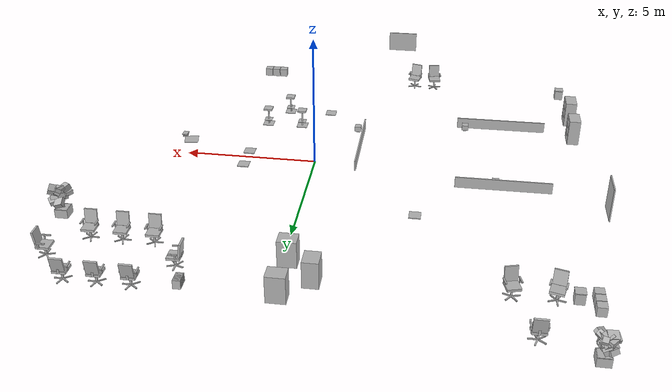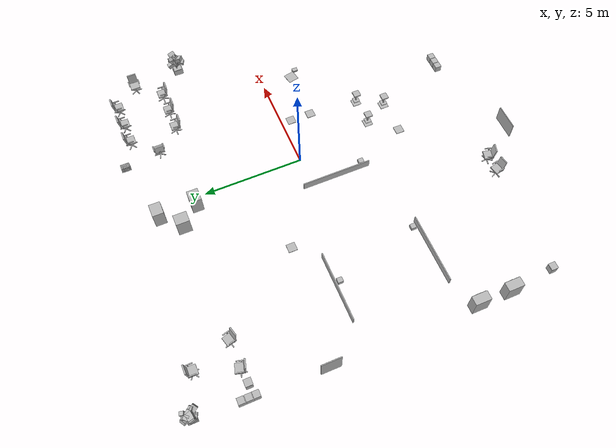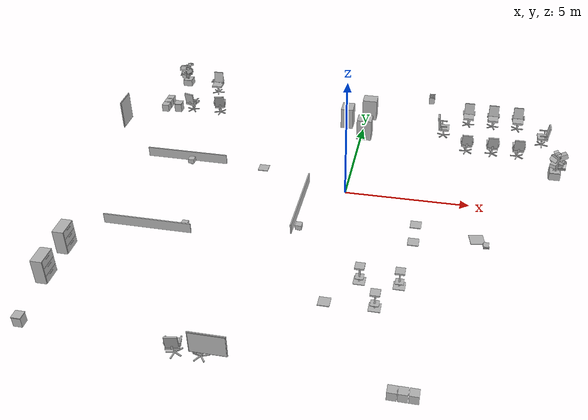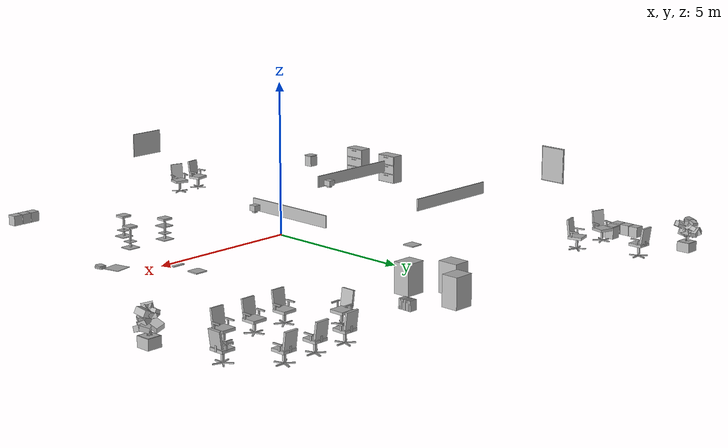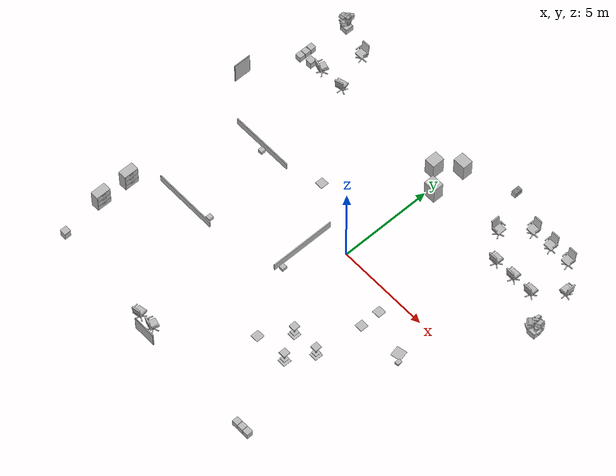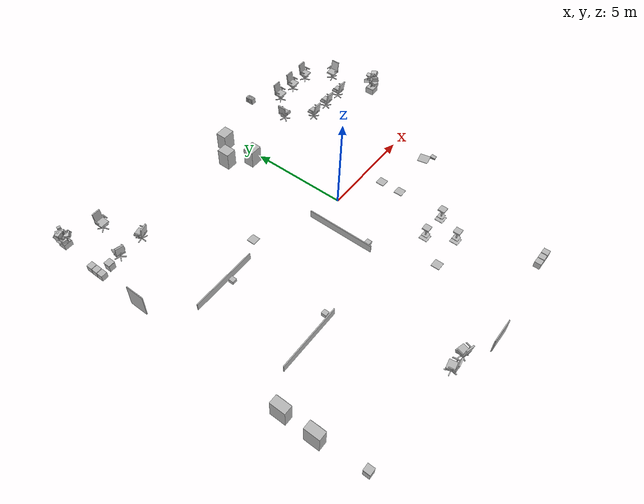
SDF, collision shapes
<sdf version="1.10">
 <model name="office_scene">
  <static>true</static>
  <link name="furniture_misc">
   <visual name="furniture_misc_visual">
    <geometry><mesh><uri>model://office_scene/meshes/furniture_misc.glb</uri></mesh></geometry>
   </visual>
   <collision name="furniture_misc_c0">
    <pose>-2.60379 -10.02456 1.10667 0.00000 -0.00000 0.00000</pose>
    <geometry><box><size>1.2000 0.0200 0.8000</size></box></geometry>
   </collision>
   <collision name="furniture_misc_c1">
    <pose>-2.60379 -10.00456 1.10667 0.00000 -0.00000 0.00000</pose>
    <geometry><box><size>1.2500 0.0400 0.8500</size></box></geometry>
   </collision>
   <collision name="furniture_misc_c2">
    <pose>-10.50379 2.91544 1.05667 0.00000 -0.00000 1.57080</pose>
    <geometry><box><size>0.9000 0.0200 1.2000</size></box></geometry>
   </collision>
   <collision name="furniture_misc_c3">
    <pose>-10.52379 2.91544 1.05667 0.00000 -0.00000 1.57080</pose>
    <geometry><box><size>0.9500 0.0400 1.2500</size></box></geometry>
   </collision>
   <collision name="furniture_misc_c4">
    <pose>-9.90379 -8.68456 -0.53333 0.00000 -0.00000 0.00000</pose>
    <geometry><box><size>0.3400 0.3400 0.4200</size></box></geometry>
   </collision>
   <collision name="furniture_misc_c5">
    <pose>-9.90379 -8.68456 -0.32333 0.00000 -0.00000 0.00000</pose>
    <geometry><box><size>0.3600 0.3600 0.0300</size></box></geometry>
   </collision>
   <collision name="furniture_misc_c6">
    <pose>2.91621 7.96544 0.16167 0.00000 0.05105 1.57080</pose>
    <geometry><box><size>0.0550 0.2600 0.3100</size></box></geometry>
   </collision>
   <collision name="furniture_misc_c7">
    <pose>2.91621 8.03044 0.16167 0.00000 0.04251 1.57080</pose>
    <geometry><box><size>0.0550 0.2600 0.3100</size></box></geometry>
   </collision>
   <collision name="furniture_misc_c8">
    <pose>2.91621 8.09544 0.16167 0.00000 -0.04779 1.57080</pose>
    <geometry><box><size>0.0550 0.2600 0.3100</size></box></geometry>
   </collision>
   <collision name="furniture_misc_c9">
    <pose>2.91621 8.16044 0.16167 0.00000 -0.02573 1.57080</pose>
    <geometry><box><size>0.0550 0.2600 0.3100</size></box></geometry>
   </collision>
   <collision name="furniture_misc_c10">
    <pose>2.91621 8.22544 0.16167 0.00000 -0.03008 1.57080</pose>
    <geometry><box><size>0.0550 0.2600 0.3100</size></box></geometry>
   </collision>
   <collision name="furniture_misc_c11">
    <pose>2.91621 8.29044 0.16167 0.00000 -0.00765 1.57080</pose>
    <geometry><box><size>0.0550 0.2600 0.3100</size></box></geometry>
   </collision>
   <collision name="furniture_misc_c12">
    <pose>2.91621 8.35544 0.16167 0.00000 -0.03722 1.57080</pose>
    <geometry><box><size>0.0550 0.2600 0.3100</size></box></geometry>
   </collision>
   <collision name="furniture_misc_c13">
    <pose>5.39621 -1.68456 -0.31461 0.00000 -0.00000 0.20944</pose>
    <geometry><box><size>0.5532 0.5532 0.0200</size></box></geometry>
   </collision>
   <collision name="furniture_misc_c14">
    <pose>5.74621 -2.03456 -0.30533 0.00000 -0.00000 0.14257</pose>
    <geometry><box><size>0.2100 0.2800 0.0350</size></box></geometry>
   </collision>
   <collision name="furniture_misc_c15">
    <pose>5.74621 -2.03456 -0.26933 0.00000 -0.00000 0.19213</pose>
    <geometry><box><size>0.2100 0.2800 0.0350</size></box></geometry>
   </collision>
   <collision name="furniture_misc_c16">
    <pose>5.74621 -2.03456 -0.23333 0.00000 -0.00000 -0.04998</pose>
    <geometry><box><size>0.2100 0.2800 0.0350</size></box></geometry>
   </collision>
   <collision name="furniture_misc_c17">
    <pose>-10.15379 -6.28456 -0.21833 0.00000 -0.00000 1.57080</pose>
    <geometry><box><size>0.8000 0.4500 1.0500</size></box></geometry>
   </collision>
   <collision name="furniture_misc_c18">
    <pose>-9.92379 -6.28456 -0.56833 0.00000 -0.00000 1.57080</pose>
    <geometry><box><size>0.7500 0.0200 0.3200</size></box></geometry>
   </collision>
   <collision name="furniture_misc_c19">
    <pose>-9.92379 -6.28456 -0.21833 0.00000 -0.00000 1.57080</pose>
    <geometry><box><size>0.7500 0.0200 0.3200</size></box></geometry>
   </collision>
   <collision name="furniture_misc_c20">
    <pose>-9.92379 -6.28456 0.13167 0.00000 -0.00000 1.57080</pose>
    <geometry><box><size>0.7500 0.0200 0.3200</size></box></geometry>
   </collision>
   <collision name="furniture_misc_c21">
    <pose>-9.90379 -6.28456 -0.47033 0.00000 -0.00000 1.57080</pose>
    <geometry><box><size>0.2200 0.0250 0.0200</size></box></geometry>
   </collision>
   <collision name="furniture_misc_c22">
    <pose>-9.90379 -6.28456 -0.12033 0.00000 -0.00000 1.57080</pose>
    <geometry><box><size>0.2200 0.0250 0.0200</size></box></geometry>
   </collision>
   <collision name="furniture_misc_c23">
    <pose>-9.90379 -6.28456 0.22967 0.00000 -0.00000 1.57080</pose>
    <geometry><box><size>0.2200 0.0250 0.0200</size></box></geometry>
   </collision>
   <collision name="furniture_misc_c24">
    <pose>-10.15379 -4.58456 -0.21833 0.00000 -0.00000 1.57080</pose>
    <geometry><box><size>0.8000 0.4500 1.0500</size></box></geometry>
   </collision>
   <collision name="furniture_misc_c25">
    <pose>-9.92379 -4.58456 -0.56833 0.00000 -0.00000 1.57080</pose>
    <geometry><box><size>0.7500 0.0200 0.3200</size></box></geometry>
   </collision>
   <collision name="furniture_misc_c26">
    <pose>-9.92379 -4.58456 -0.21833 0.00000 -0.00000 1.57080</pose>
    <geometry><box><size>0.7500 0.0200 0.3200</size></box></geometry>
   </collision>
   <collision name="furniture_misc_c27">
    <pose>-9.92379 -4.58456 0.13167 0.00000 -0.00000 1.57080</pose>
    <geometry><box><size>0.7500 0.0200 0.3200</size></box></geometry>
   </collision>
   <collision name="furniture_misc_c28">
    <pose>-9.90379 -4.58456 -0.47033 0.00000 -0.00000 1.57080</pose>
    <geometry><box><size>0.2200 0.0250 0.0200</size></box></geometry>
   </collision>
   <collision name="furniture_misc_c29">
    <pose>-9.90379 -4.58456 -0.12033 0.00000 -0.00000 1.57080</pose>
    <geometry><box><size>0.2200 0.0250 0.0200</size></box></geometry>
   </collision>
   <collision name="furniture_misc_c30">
    <pose>-9.90379 -4.58456 0.22967 0.00000 -0.00000 1.57080</pose>
    <geometry><box><size>0.2200 0.0250 0.0200</size></box></geometry>
   </collision>
   <collision name="furniture_misc_c31">
    <pose>2.99621 -0.68456 -0.72533 0.00000 -0.00000 0.00000</pose>
    <geometry><box><size>0.4400 0.4400 0.0350</size></box></geometry>
   </collision>
   <collision name="furniture_misc_c32">
    <pose>2.99621 -1.78456 -0.72533 0.00000 -0.00000 0.00000</pose>
    <geometry><box><size>0.4400 0.4400 0.0350</size></box></geometry>
   </collision>
   <collision name="furniture_misc_c33">
    <pose>0.19621 -5.68456 -0.72533 0.00000 -0.00000 0.00000</pose>
    <geometry><box><size>0.4400 0.4400 0.0350</size></box></geometry>
   </collision>
   <collision name="furniture_misc_c34">
    <pose>-4.00379 2.11544 -0.72533 0.00000 -0.00000 0.00000</pose>
    <geometry><box><size>0.4400 0.4400 0.0350</size></box></geometry>
   </collision>
   <collision name="furniture_misc_c35">
    <pose>8.16621 6.57544 -0.07333 0.00000 -0.00000 -1.57080</pose>
    <geometry><box><size>0.0500 0.3200 0.0400</size></box></geometry>
   </collision>
   <collision name="furniture_misc_c36">
    <pose>8.16621 6.05544 -0.07333 0.00000 -0.00000 -1.57080</pose>
    <geometry><box><size>0.0500 0.3200 0.0400</size></box></geometry>
   </collision>
   <collision name="furniture_misc_c37">
    <pose>8.24621 6.57544 -0.16333 0.00000 -0.00000 -1.57080</pose>
    <geometry><box><size>0.0400 0.0500 0.1600</size></box></geometry>
   </collision>
   <collision name="furniture_misc_c38">
    <pose>8.24621 6.05544 -0.16333 0.00000 -0.00000 -1.57080</pose>
    <geometry><box><size>0.0400 0.0500 0.1600</size></box></geometry>
   </collision>
   <collision name="furniture_misc_c39">
    <pose>8.38121 6.31544 0.04667 -0.13963 -0.00000 -1.57080</pose>
    <geometry><box><size>0.4500 0.0700 0.5200</size></box></geometry>
   </collision>
   <collision name="furniture_misc_c40">
    <pose>8.36621 6.31544 -0.22333 0.00000 -0.00000 -1.57080</pose>
    <geometry><box><size>0.0700 0.0600 0.1800</size></box></geometry>
   </collision>
   <collision name="furniture_misc_c41">
    <pose>8.14621 6.31544 -0.47333 0.00000 -0.00000 0.00000</pose>
    <geometry><box><size>0.0700 0.0700 0.2800</size></box></geometry>
   </collision>
   <collision name="furniture_misc_c42">
    <pose>8.14621 6.31544 -0.28333 0.00000 -0.00000 -1.57080</pose>
    <geometry><box><size>0.4800 0.4700 0.0900</size></box></geometry>
   </collision>
   <collision name="furniture_misc_c43">
    <pose>8.14621 6.16544 -0.67333 0.00000 -0.00000 -1.57080</pose>
    <geometry><box><size>0.3000 0.0450 0.0350</size></box></geometry>
   </collision>
   <collision name="furniture_misc_c44">
    <pose>8.28887 6.26908 -0.67333 0.00000 -0.00000 -0.31416</pose>
    <geometry><box><size>0.3000 0.0450 0.0350</size></box></geometry>
   </collision>
   <collision name="furniture_misc_c45">
    <pose>8.23438 6.43679 -0.67333 0.00000 -0.00000 0.94248</pose>
    <geometry><box><size>0.3000 0.0450 0.0350</size></box></geometry>
   </collision>
   <collision name="furniture_misc_c46">
    <pose>8.05804 6.43679 -0.67333 0.00000 -0.00000 2.19911</pose>
    <geometry><box><size>0.3000 0.0450 0.0350</size></box></geometry>
   </collision>
   <collision name="furniture_misc_c47">
    <pose>8.00355 6.26908 -0.67333 0.00000 -0.00000 -2.82743</pose>
    <geometry><box><size>0.3000 0.0450 0.0350</size></box></geometry>
   </collision>
   <collision name="furniture_misc_c48">
    <pose>4.48621 7.53544 -0.07333 0.00000 -0.00000 0.00000</pose>
    <geometry><box><size>0.0500 0.3200 0.0400</size></box></geometry>
   </collision>
   <collision name="furniture_misc_c49">
    <pose>5.00621 7.53544 -0.07333 0.00000 -0.00000 0.00000</pose>
    <geometry><box><size>0.0500 0.3200 0.0400</size></box></geometry>
   </collision>
   <collision name="furniture_misc_c50">
    <pose>4.48621 7.61544 -0.16333 0.00000 -0.00000 0.00000</pose>
    <geometry><box><size>0.0400 0.0500 0.1600</size></box></geometry>
   </collision>
   <collision name="furniture_misc_c51">
    <pose>5.00621 7.61544 -0.16333 0.00000 -0.00000 0.00000</pose>
    <geometry><box><size>0.0400 0.0500 0.1600</size></box></geometry>
   </collision>
   <collision name="furniture_misc_c52">
    <pose>4.74621 7.75044 0.04667 -0.13963 -0.00000 0.00000</pose>
    <geometry><box><size>0.4500 0.0700 0.5200</size></box></geometry>
   </collision>
   <collision name="furniture_misc_c53">
    <pose>4.74621 7.73544 -0.22333 0.00000 -0.00000 0.00000</pose>
    <geometry><box><size>0.0700 0.0600 0.1800</size></box></geometry>
   </collision>
   <collision name="furniture_misc_c54">
    <pose>4.74621 7.51544 -0.47333 0.00000 -0.00000 0.00000</pose>
    <geometry><box><size>0.0700 0.0700 0.2800</size></box></geometry>
   </collision>
   <collision name="furniture_misc_c55">
    <pose>4.74621 7.51544 -0.28333 0.00000 -0.00000 0.00000</pose>
    <geometry><box><size>0.4800 0.4700 0.0900</size></box></geometry>
   </collision>
   <collision name="furniture_misc_c56">
    <pose>4.89621 7.51544 -0.67333 0.00000 -0.00000 0.00000</pose>
    <geometry><box><size>0.3000 0.0450 0.0350</size></box></geometry>
   </collision>
   <collision name="furniture_misc_c57">
    <pose>4.79256 7.65810 -0.67333 0.00000 -0.00000 1.25664</pose>
    <geometry><box><size>0.3000 0.0450 0.0350</size></box></geometry>
   </collision>
   <collision name="furniture_misc_c58">
    <pose>4.62486 7.60360 -0.67333 0.00000 -0.00000 2.51327</pose>
    <geometry><box><size>0.3000 0.0450 0.0350</size></box></geometry>
   </collision>
   <collision name="furniture_misc_c59">
    <pose>4.62486 7.42727 -0.67333 0.00000 -0.00000 -2.51327</pose>
    <geometry><box><size>0.3000 0.0450 0.0350</size></box></geometry>
   </collision>
   <collision name="furniture_misc_c60">
    <pose>4.79256 7.37278 -0.67333 0.00000 -0.00000 -1.25664</pose>
    <geometry><box><size>0.3000 0.0450 0.0350</size></box></geometry>
   </collision>
   <collision name="furniture_misc_c61">
    <pose>5.63621 7.53544 -0.07333 0.00000 -0.00000 0.00000</pose>
    <geometry><box><size>0.0500 0.3200 0.0400</size></box></geometry>
   </collision>
   <collision name="furniture_misc_c62">
    <pose>6.15621 7.53544 -0.07333 0.00000 -0.00000 0.00000</pose>
    <geometry><box><size>0.0500 0.3200 0.0400</size></box></geometry>
   </collision>
   <collision name="furniture_misc_c63">
    <pose>5.63621 7.61544 -0.16333 0.00000 -0.00000 0.00000</pose>
    <geometry><box><size>0.0400 0.0500 0.1600</size></box></geometry>
   </collision>
   <collision name="furniture_misc_c64">
    <pose>6.15621 7.61544 -0.16333 0.00000 -0.00000 0.00000</pose>
    <geometry><box><size>0.0400 0.0500 0.1600</size></box></geometry>
   </collision>
   <collision name="furniture_misc_c65">
    <pose>5.89621 7.75044 0.04667 -0.13963 -0.00000 0.00000</pose>
    <geometry><box><size>0.4500 0.0700 0.5200</size></box></geometry>
   </collision>
   <collision name="furniture_misc_c66">
    <pose>5.89621 7.73544 -0.22333 0.00000 -0.00000 0.00000</pose>
    <geometry><box><size>0.0700 0.0600 0.1800</size></box></geometry>
   </collision>
   <collision name="furniture_misc_c67">
    <pose>5.89621 7.51544 -0.47333 0.00000 -0.00000 0.00000</pose>
    <geometry><box><size>0.0700 0.0700 0.2800</size></box></geometry>
   </collision>
   <collision name="furniture_misc_c68">
    <pose>5.89621 7.51544 -0.28333 0.00000 -0.00000 0.00000</pose>
    <geometry><box><size>0.4800 0.4700 0.0900</size></box></geometry>
   </collision>
   <collision name="furniture_misc_c69">
    <pose>6.04621 7.51544 -0.67333 0.00000 -0.00000 0.00000</pose>
    <geometry><box><size>0.3000 0.0450 0.0350</size></box></geometry>
   </collision>
   <collision name="furniture_misc_c70">
    <pose>5.94256 7.65810 -0.67333 0.00000 -0.00000 1.25664</pose>
    <geometry><box><size>0.3000 0.0450 0.0350</size></box></geometry>
   </collision>
   <collision name="furniture_misc_c71">
    <pose>5.77486 7.60360 -0.67333 0.00000 -0.00000 2.51327</pose>
    <geometry><box><size>0.3000 0.0450 0.0350</size></box></geometry>
   </collision>
   <collision name="furniture_misc_c72">
    <pose>5.77486 7.42727 -0.67333 0.00000 -0.00000 -2.51327</pose>
    <geometry><box><size>0.3000 0.0450 0.0350</size></box></geometry>
   </collision>
   <collision name="furniture_misc_c73">
    <pose>5.94256 7.37278 -0.67333 0.00000 -0.00000 -1.25664</pose>
    <geometry><box><size>0.3000 0.0450 0.0350</size></box></geometry>
   </collision>
   <collision name="furniture_misc_c74">
    <pose>6.78621 7.53544 -0.07333 0.00000 -0.00000 0.00000</pose>
    <geometry><box><size>0.0500 0.3200 0.0400</size></box></geometry>
   </collision>
   <collision name="furniture_misc_c75">
    <pose>7.30621 7.53544 -0.07333 0.00000 -0.00000 0.00000</pose>
    <geometry><box><size>0.0500 0.3200 0.0400</size></box></geometry>
   </collision>
   <collision name="furniture_misc_c76">
    <pose>6.78621 7.61544 -0.16333 0.00000 -0.00000 0.00000</pose>
    <geometry><box><size>0.0400 0.0500 0.1600</size></box></geometry>
   </collision>
   <collision name="furniture_misc_c77">
    <pose>7.30621 7.61544 -0.16333 0.00000 -0.00000 0.00000</pose>
    <geometry><box><size>0.0400 0.0500 0.1600</size></box></geometry>
   </collision>
   <collision name="furniture_misc_c78">
    <pose>7.04621 7.75044 0.04667 -0.13963 -0.00000 0.00000</pose>
    <geometry><box><size>0.4500 0.0700 0.5200</size></box></geometry>
   </collision>
   <collision name="furniture_misc_c79">
    <pose>7.04621 7.73544 -0.22333 0.00000 -0.00000 0.00000</pose>
    <geometry><box><size>0.0700 0.0600 0.1800</size></box></geometry>
   </collision>
   <collision name="furniture_misc_c80">
    <pose>7.04621 7.51544 -0.47333 0.00000 -0.00000 0.00000</pose>
    <geometry><box><size>0.0700 0.0700 0.2800</size></box></geometry>
   </collision>
   <collision name="furniture_misc_c81">
    <pose>7.04621 7.51544 -0.28333 0.00000 -0.00000 0.00000</pose>
    <geometry><box><size>0.4800 0.4700 0.0900</size></box></geometry>
   </collision>
   <collision name="furniture_misc_c82">
    <pose>7.19621 7.51544 -0.67333 0.00000 -0.00000 0.00000</pose>
    <geometry><box><size>0.3000 0.0450 0.0350</size></box></geometry>
   </collision>
   <collision name="furniture_misc_c83">
    <pose>7.09256 7.65810 -0.67333 0.00000 -0.00000 1.25664</pose>
    <geometry><box><size>0.3000 0.0450 0.0350</size></box></geometry>
   </collision>
   <collision name="furniture_misc_c84">
    <pose>6.92486 7.60360 -0.67333 0.00000 -0.00000 2.51327</pose>
    <geometry><box><size>0.3000 0.0450 0.0350</size></box></geometry>
   </collision>
   <collision name="furniture_misc_c85">
    <pose>6.92486 7.42727 -0.67333 0.00000 -0.00000 -2.51327</pose>
    <geometry><box><size>0.3000 0.0450 0.0350</size></box></geometry>
   </collision>
   <collision name="furniture_misc_c86">
    <pose>7.09256 7.37278 -0.67333 0.00000 -0.00000 -1.25664</pose>
    <geometry><box><size>0.3000 0.0450 0.0350</size></box></geometry>
   </collision>
   <collision name="furniture_misc_c87">
    <pose>5.00621 5.09544 -0.07333 0.00000 -0.00000 -3.14159</pose>
    <geometry><box><size>0.0500 0.3200 0.0400</size></box></geometry>
   </collision>
   <collision name="furniture_misc_c88">
    <pose>4.48621 5.09544 -0.07333 0.00000 -0.00000 -3.14159</pose>
    <geometry><box><size>0.0500 0.3200 0.0400</size></box></geometry>
   </collision>
   <collision name="furniture_misc_c89">
    <pose>5.00621 5.01544 -0.16333 0.00000 -0.00000 -3.14159</pose>
    <geometry><box><size>0.0400 0.0500 0.1600</size></box></geometry>
   </collision>
   <collision name="furniture_misc_c90">
    <pose>4.48621 5.01544 -0.16333 0.00000 -0.00000 -3.14159</pose>
    <geometry><box><size>0.0400 0.0500 0.1600</size></box></geometry>
   </collision>
   <collision name="furniture_misc_c91">
    <pose>4.74621 4.88044 0.04667 -0.13963 -0.00000 -3.14159</pose>
    <geometry><box><size>0.4500 0.0700 0.5200</size></box></geometry>
   </collision>
   <collision name="furniture_misc_c92">
    <pose>4.74621 4.89544 -0.22333 0.00000 -0.00000 -3.14159</pose>
    <geometry><box><size>0.0700 0.0600 0.1800</size></box></geometry>
   </collision>
   <collision name="furniture_misc_c93">
    <pose>4.74621 5.11544 -0.47333 0.00000 -0.00000 0.00000</pose>
    <geometry><box><size>0.0700 0.0700 0.2800</size></box></geometry>
   </collision>
   <collision name="furniture_misc_c94">
    <pose>4.74621 5.11544 -0.28333 0.00000 -0.00000 -3.14159</pose>
    <geometry><box><size>0.4800 0.4700 0.0900</size></box></geometry>
   </collision>
   <collision name="furniture_misc_c95">
    <pose>4.59621 5.11544 -0.67333 0.00000 -0.00000 -3.14159</pose>
    <geometry><box><size>0.3000 0.0450 0.0350</size></box></geometry>
   </collision>
   <collision name="furniture_misc_c96">
    <pose>4.69986 4.97278 -0.67333 0.00000 -0.00000 -1.88496</pose>
    <geometry><box><size>0.3000 0.0450 0.0350</size></box></geometry>
   </collision>
   <collision name="furniture_misc_c97">
    <pose>4.86756 5.02727 -0.67333 0.00000 -0.00000 -0.62832</pose>
    <geometry><box><size>0.3000 0.0450 0.0350</size></box></geometry>
   </collision>
   <collision name="furniture_misc_c98">
    <pose>4.86756 5.20361 -0.67333 0.00000 -0.00000 0.62832</pose>
    <geometry><box><size>0.3000 0.0450 0.0350</size></box></geometry>
   </collision>
   <collision name="furniture_misc_c99">
    <pose>4.69986 5.25810 -0.67333 0.00000 -0.00000 1.88496</pose>
    <geometry><box><size>0.3000 0.0450 0.0350</size></box></geometry>
   </collision>
   <collision name="furniture_misc_c100">
    <pose>6.15621 5.09544 -0.07333 0.00000 -0.00000 -3.14159</pose>
    <geometry><box><size>0.0500 0.3200 0.0400</size></box></geometry>
   </collision>
   <collision name="furniture_misc_c101">
    <pose>5.63621 5.09544 -0.07333 0.00000 -0.00000 -3.14159</pose>
    <geometry><box><size>0.0500 0.3200 0.0400</size></box></geometry>
   </collision>
   <collision name="furniture_misc_c102">
    <pose>6.15621 5.01544 -0.16333 0.00000 -0.00000 -3.14159</pose>
    <geometry><box><size>0.0400 0.0500 0.1600</size></box></geometry>
   </collision>
   <collision name="furniture_misc_c103">
    <pose>5.63621 5.01544 -0.16333 0.00000 -0.00000 -3.14159</pose>
    <geometry><box><size>0.0400 0.0500 0.1600</size></box></geometry>
   </collision>
   <collision name="furniture_misc_c104">
    <pose>5.89621 4.88044 0.04667 -0.13963 -0.00000 -3.14159</pose>
    <geometry><box><size>0.4500 0.0700 0.5200</size></box></geometry>
   </collision>
   <collision name="furniture_misc_c105">
    <pose>5.89621 4.89544 -0.22333 0.00000 -0.00000 -3.14159</pose>
    <geometry><box><size>0.0700 0.0600 0.1800</size></box></geometry>
   </collision>
   <collision name="furniture_misc_c106">
    <pose>5.89621 5.11544 -0.47333 0.00000 -0.00000 0.00000</pose>
    <geometry><box><size>0.0700 0.0700 0.2800</size></box></geometry>
   </collision>
   <collision name="furniture_misc_c107">
    <pose>5.89621 5.11544 -0.28333 0.00000 -0.00000 -3.14159</pose>
    <geometry><box><size>0.4800 0.4700 0.0900</size></box></geometry>
   </collision>
   <collision name="furniture_misc_c108">
    <pose>5.74621 5.11544 -0.67333 0.00000 -0.00000 -3.14159</pose>
    <geometry><box><size>0.3000 0.0450 0.0350</size></box></geometry>
   </collision>
   <collision name="furniture_misc_c109">
    <pose>5.84986 4.97278 -0.67333 0.00000 -0.00000 -1.88496</pose>
    <geometry><box><size>0.3000 0.0450 0.0350</size></box></geometry>
   </collision>
   <collision name="furniture_misc_c110">
    <pose>6.01756 5.02727 -0.67333 0.00000 -0.00000 -0.62832</pose>
    <geometry><box><size>0.3000 0.0450 0.0350</size></box></geometry>
   </collision>
   <collision name="furniture_misc_c111">
    <pose>6.01756 5.20361 -0.67333 0.00000 -0.00000 0.62832</pose>
    <geometry><box><size>0.3000 0.0450 0.0350</size></box></geometry>
   </collision>
   <collision name="furniture_misc_c112">
    <pose>5.84986 5.25810 -0.67333 0.00000 -0.00000 1.88496</pose>
    <geometry><box><size>0.3000 0.0450 0.0350</size></box></geometry>
   </collision>
   <collision name="furniture_misc_c113">
    <pose>7.30621 5.09544 -0.07333 0.00000 -0.00000 -3.14159</pose>
    <geometry><box><size>0.0500 0.3200 0.0400</size></box></geometry>
   </collision>
   <collision name="furniture_misc_c114">
    <pose>6.78621 5.09544 -0.07333 0.00000 -0.00000 -3.14159</pose>
    <geometry><box><size>0.0500 0.3200 0.0400</size></box></geometry>
   </collision>
   <collision name="furniture_misc_c115">
    <pose>7.30621 5.01544 -0.16333 0.00000 -0.00000 -3.14159</pose>
    <geometry><box><size>0.0400 0.0500 0.1600</size></box></geometry>
   </collision>
   <collision name="furniture_misc_c116">
    <pose>6.78621 5.01544 -0.16333 0.00000 -0.00000 -3.14159</pose>
    <geometry><box><size>0.0400 0.0500 0.1600</size></box></geometry>
   </collision>
   <collision name="furniture_misc_c117">
    <pose>7.04621 4.88044 0.04667 -0.13963 -0.00000 -3.14159</pose>
    <geometry><box><size>0.4500 0.0700 0.5200</size></box></geometry>
   </collision>
   <collision name="furniture_misc_c118">
    <pose>7.04621 4.89544 -0.22333 0.00000 -0.00000 -3.14159</pose>
    <geometry><box><size>0.0700 0.0600 0.1800</size></box></geometry>
   </collision>
   <collision name="furniture_misc_c119">
    <pose>7.04621 5.11544 -0.47333 0.00000 -0.00000 0.00000</pose>
    <geometry><box><size>0.0700 0.0700 0.2800</size></box></geometry>
   </collision>
   <collision name="furniture_misc_c120">
    <pose>7.04621 5.11544 -0.28333 0.00000 -0.00000 -3.14159</pose>
    <geometry><box><size>0.4800 0.4700 0.0900</size></box></geometry>
   </collision>
   <collision name="furniture_misc_c121">
    <pose>6.89621 5.11544 -0.67333 0.00000 -0.00000 -3.14159</pose>
    <geometry><box><size>0.3000 0.0450 0.0350</size></box></geometry>
   </collision>
   <collision name="furniture_misc_c122">
    <pose>6.99986 4.97278 -0.67333 0.00000 -0.00000 -1.88496</pose>
    <geometry><box><size>0.3000 0.0450 0.0350</size></box></geometry>
   </collision>
   <collision name="furniture_misc_c123">
    <pose>7.16756 5.02727 -0.67333 0.00000 -0.00000 -0.62832</pose>
    <geometry><box><size>0.3000 0.0450 0.0350</size></box></geometry>
   </collision>
   <collision name="furniture_misc_c124">
    <pose>7.16756 5.20361 -0.67333 0.00000 -0.00000 0.62832</pose>
    <geometry><box><size>0.3000 0.0450 0.0350</size></box></geometry>
   </collision>
   <collision name="furniture_misc_c125">
    <pose>6.99986 5.25810 -0.67333 0.00000 -0.00000 1.88496</pose>
    <geometry><box><size>0.3000 0.0450 0.0350</size></box></geometry>
   </collision>
   <collision name="furniture_misc_c126">
    <pose>3.62621 6.05544 -0.07333 0.00000 -0.00000 1.57080</pose>
    <geometry><box><size>0.0500 0.3200 0.0400</size></box></geometry>
   </collision>
   <collision name="furniture_misc_c127">
    <pose>3.62621 6.57544 -0.07333 0.00000 -0.00000 1.57080</pose>
    <geometry><box><size>0.0500 0.3200 0.0400</size></box></geometry>
   </collision>
   <collision name="furniture_misc_c128">
    <pose>3.54621 6.05544 -0.16333 0.00000 -0.00000 1.57080</pose>
    <geometry><box><size>0.0400 0.0500 0.1600</size></box></geometry>
   </collision>
   <collision name="furniture_misc_c129">
    <pose>3.54621 6.57544 -0.16333 0.00000 -0.00000 1.57080</pose>
    <geometry><box><size>0.0400 0.0500 0.1600</size></box></geometry>
   </collision>
   <collision name="furniture_misc_c130">
    <pose>3.41121 6.31544 0.04667 -0.13963 -0.00000 1.57080</pose>
    <geometry><box><size>0.4500 0.0700 0.5200</size></box></geometry>
   </collision>
   <collision name="furniture_misc_c131">
    <pose>3.42621 6.31544 -0.22333 0.00000 -0.00000 1.57080</pose>
    <geometry><box><size>0.0700 0.0600 0.1800</size></box></geometry>
   </collision>
   <collision name="furniture_misc_c132">
    <pose>3.64621 6.31544 -0.47333 0.00000 -0.00000 0.00000</pose>
    <geometry><box><size>0.0700 0.0700 0.2800</size></box></geometry>
   </collision>
   <collision name="furniture_misc_c133">
    <pose>3.64621 6.31544 -0.28333 0.00000 -0.00000 1.57080</pose>
    <geometry><box><size>0.4800 0.4700 0.0900</size></box></geometry>
   </collision>
   <collision name="furniture_misc_c134">
    <pose>3.64621 6.46544 -0.67333 0.00000 -0.00000 1.57080</pose>
    <geometry><box><size>0.3000 0.0450 0.0350</size></box></geometry>
   </collision>
   <collision name="furniture_misc_c135">
    <pose>3.50355 6.36179 -0.67333 0.00000 -0.00000 2.82743</pose>
    <geometry><box><size>0.3000 0.0450 0.0350</size></box></geometry>
   </collision>
   <collision name="furniture_misc_c136">
    <pose>3.55804 6.19408 -0.67333 0.00000 -0.00000 -2.19911</pose>
    <geometry><box><size>0.3000 0.0450 0.0350</size></box></geometry>
   </collision>
   <collision name="furniture_misc_c137">
    <pose>3.73438 6.19408 -0.67333 0.00000 -0.00000 -0.94248</pose>
    <geometry><box><size>0.3000 0.0450 0.0350</size></box></geometry>
   </collision>
   <collision name="furniture_misc_c138">
    <pose>3.78887 6.36179 -0.67333 0.00000 -0.00000 0.31416</pose>
    <geometry><box><size>0.3000 0.0450 0.0350</size></box></geometry>
   </collision>
   <collision name="furniture_misc_c139">
    <pose>8.52804 3.72929 -0.01677 -0.03226 0.24668 -2.24022</pose>
    <geometry><box><size>0.2429 0.2081 0.1249</size></box></geometry>
   </collision>
   <collision name="furniture_misc_c140">
    <pose>8.81660 3.96345 -0.06193 -0.27629 0.20632 0.59141</pose>
    <geometry><box><size>0.3383 0.2898 0.1739</size></box></geometry>
   </collision>
   <collision name="furniture_misc_c141">
    <pose>8.80128 3.87252 0.32574 -0.23810 -0.31885 0.27147</pose>
    <geometry><box><size>0.3925 0.3363 0.2018</size></box></geometry>
   </collision>
   <collision name="furniture_misc_c142">
    <pose>8.76798 3.73755 0.12222 -0.05431 0.17216 -0.42571</pose>
    <geometry><box><size>0.2553 0.2187 0.1312</size></box></geometry>
   </collision>
   <collision name="furniture_misc_c143">
    <pose>8.56521 4.05454 0.35392 -0.48157 0.00565 1.69974</pose>
    <geometry><box><size>0.2249 0.1927 0.1156</size></box></geometry>
   </collision>
   <collision name="furniture_misc_c144">
    <pose>8.74902 3.79423 -0.02049 0.15832 0.15011 -0.13791</pose>
    <geometry><box><size>0.2986 0.2558 0.1535</size></box></geometry>
   </collision>
   <collision name="furniture_misc_c145">
    <pose>8.50545 3.67912 0.30104 -0.19222 -0.28482 -2.15822</pose>
    <geometry><box><size>0.3927 0.3364 0.2019</size></box></geometry>
   </collision>
   <collision name="furniture_misc_c146">
    <pose>8.60384 3.87453 0.29764 -0.36028 0.48944 1.44241</pose>
    <geometry><box><size>0.3493 0.2992 0.1795</size></box></geometry>
   </collision>
   <collision name="furniture_misc_c147">
    <pose>8.84568 3.78691 -0.13620 0.37985 -0.06926 -0.11384</pose>
    <geometry><box><size>0.3307 0.2833 0.1700</size></box></geometry>
   </collision>
   <collision name="furniture_misc_c148">
    <pose>8.78381 3.88351 0.04712 0.47093 0.09878 0.34810</pose>
    <geometry><box><size>0.3092 0.2649 0.1589</size></box></geometry>
   </collision>
   <collision name="furniture_misc_c149">
    <pose>8.71727 3.81093 0.06731 -0.40781 -0.13405 -0.03724</pose>
    <geometry><box><size>0.2824 0.2419 0.1452</size></box></geometry>
   </collision>
   <collision name="furniture_misc_c150">
    <pose>8.52396 3.93254 0.20825 0.01743 -0.20455 2.12359</pose>
    <geometry><box><size>0.2874 0.2462 0.1477</size></box></geometry>
   </collision>
   <collision name="furniture_misc_c151">
    <pose>8.62904 3.80718 0.31595 0.37639 -0.41594 -0.24646</pose>
    <geometry><box><size>0.2594 0.2222 0.1333</size></box></geometry>
   </collision>
   <collision name="furniture_misc_c152">
    <pose>8.55890 4.08463 -0.05255 0.31978 0.34959 1.70853</pose>
    <geometry><box><size>0.3541 0.3034 0.1820</size></box></geometry>
   </collision>
   <collision name="furniture_misc_c153">
    <pose>8.46892 3.56179 0.05965 0.01478 -0.00539 -2.03592</pose>
    <geometry><box><size>0.3147 0.2696 0.1618</size></box></geometry>
   </collision>
   <collision name="furniture_misc_c154">
    <pose>8.55725 3.88954 0.25647 0.39529 -0.23108 2.05491</pose>
    <geometry><box><size>0.2512 0.2152 0.1291</size></box></geometry>
   </collision>
   <collision name="furniture_misc_c155">
    <pose>8.62263 3.81824 -0.01305 -0.27759 -0.23555 0.10576</pose>
    <geometry><box><size>0.3276 0.2807 0.1684</size></box></geometry>
   </collision>
   <collision name="furniture_misc_c156">
    <pose>8.59871 3.81783 0.35383 0.41543 0.12170 0.76452</pose>
    <geometry><box><size>0.2934 0.2513 0.1508</size></box></geometry>
   </collision>
   <collision name="furniture_misc_c157">
    <pose>8.59621 3.81544 -0.57333 0.00000 -0.00000 0.00000</pose>
    <geometry><box><size>0.4800 0.4800 0.3400</size></box></geometry>
   </collision>
   <collision name="furniture_misc_c158">
    <pose>8.59621 3.81544 -0.40833 0.00000 -0.00000 0.00000</pose>
    <geometry><box><size>0.4300 0.4300 0.0200</size></box></geometry>
   </collision>
   <collision name="furniture_misc_c159">
    <pose>8.64542 3.80656 -0.18333 -0.01889 -0.03001 -0.17845</pose>
    <geometry><box><size>0.0320 0.0320 0.5500</size></box></geometry>
   </collision>
   <collision name="furniture_misc_c160">
    <pose>8.59944 3.86533 -0.18333 -0.06625 0.06162 1.50621</pose>
    <geometry><box><size>0.0320 0.0320 0.5500</size></box></geometry>
   </collision>
   <collision name="furniture_misc_c161">
    <pose>8.54626 3.81759 -0.18333 -0.10343 -0.07100 3.09860</pose>
    <geometry><box><size>0.0320 0.0320 0.5500</size></box></geometry>
   </collision>
   <collision name="furniture_misc_c162">
    <pose>8.58498 3.76672 -0.18333 0.09970 0.15822 -1.79739</pose>
    <geometry><box><size>0.0320 0.0320 0.5500</size></box></geometry>
   </collision>
   <collision name="furniture_misc_c163">
    <pose>-9.40379 6.31544 -0.53333 0.00000 -0.00000 0.00000</pose>
    <geometry><box><size>0.3400 0.3400 0.4200</size></box></geometry>
   </collision>
   <collision name="furniture_misc_c164">
    <pose>-9.40379 6.31544 -0.32333 0.00000 -0.00000 0.00000</pose>
    <geometry><box><size>0.3600 0.3600 0.0300</size></box></geometry>
   </collision>
   <collision name="furniture_misc_c165">
    <pose>-8.26379 8.38544 -0.07333 0.00000 -0.00000 0.00000</pose>
    <geometry><box><size>0.0500 0.3200 0.0400</size></box></geometry>
   </collision>
   <collision name="furniture_misc_c166">
    <pose>-7.74379 8.38544 -0.07333 0.00000 -0.00000 0.00000</pose>
    <geometry><box><size>0.0500 0.3200 0.0400</size></box></geometry>
   </collision>
   <collision name="furniture_misc_c167">
    <pose>-8.26379 8.46544 -0.16333 0.00000 -0.00000 0.00000</pose>
    <geometry><box><size>0.0400 0.0500 0.1600</size></box></geometry>
   </collision>
   <collision name="furniture_misc_c168">
    <pose>-7.74379 8.46544 -0.16333 0.00000 -0.00000 0.00000</pose>
    <geometry><box><size>0.0400 0.0500 0.1600</size></box></geometry>
   </collision>
   <collision name="furniture_misc_c169">
    <pose>-8.00379 8.60044 0.04667 -0.13963 -0.00000 0.00000</pose>
    <geometry><box><size>0.4500 0.0700 0.5200</size></box></geometry>
   </collision>
   <collision name="furniture_misc_c170">
    <pose>-8.00379 8.58544 -0.22333 0.00000 -0.00000 0.00000</pose>
    <geometry><box><size>0.0700 0.0600 0.1800</size></box></geometry>
   </collision>
   <collision name="furniture_misc_c171">
    <pose>-8.00379 8.36544 -0.47333 0.00000 -0.00000 0.00000</pose>
    <geometry><box><size>0.0700 0.0700 0.2800</size></box></geometry>
   </collision>
   <collision name="furniture_misc_c172">
    <pose>-8.00379 8.36544 -0.28333 0.00000 -0.00000 0.00000</pose>
    <geometry><box><size>0.4800 0.4700 0.0900</size></box></geometry>
   </collision>
   <collision name="furniture_misc_c173">
    <pose>-7.85379 8.36544 -0.67333 0.00000 -0.00000 0.00000</pose>
    <geometry><box><size>0.3000 0.0450 0.0350</size></box></geometry>
   </collision>
   <collision name="furniture_misc_c174">
    <pose>-7.95744 8.50809 -0.67333 0.00000 -0.00000 1.25664</pose>
    <geometry><box><size>0.3000 0.0450 0.0350</size></box></geometry>
   </collision>
   <collision name="furniture_misc_c175">
    <pose>-8.12514 8.45360 -0.67333 0.00000 -0.00000 2.51327</pose>
    <geometry><box><size>0.3000 0.0450 0.0350</size></box></geometry>
   </collision>
   <collision name="furniture_misc_c176">
    <pose>-8.12514 8.27727 -0.67333 0.00000 -0.00000 -2.51327</pose>
    <geometry><box><size>0.3000 0.0450 0.0350</size></box></geometry>
   </collision>
   <collision name="furniture_misc_c177">
    <pose>-7.95744 8.22278 -0.67333 0.00000 -0.00000 -1.25664</pose>
    <geometry><box><size>0.3000 0.0450 0.0350</size></box></geometry>
   </collision>
   <collision name="furniture_misc_c178">
    <pose>-8.45783 6.32883 -0.07333 0.00000 -0.00000 2.87979</pose>
    <geometry><box><size>0.0500 0.3200 0.0400</size></box></geometry>
   </collision>
   <collision name="furniture_misc_c179">
    <pose>-8.96011 6.46341 -0.07333 0.00000 -0.00000 2.87979</pose>
    <geometry><box><size>0.0500 0.3200 0.0400</size></box></geometry>
   </collision>
   <collision name="furniture_misc_c180">
    <pose>-8.47853 6.25155 -0.16333 0.00000 -0.00000 2.87979</pose>
    <geometry><box><size>0.0400 0.0500 0.1600</size></box></geometry>
   </collision>
   <collision name="furniture_misc_c181">
    <pose>-8.98081 6.38614 -0.16333 0.00000 -0.00000 2.87979</pose>
    <geometry><box><size>0.0400 0.0500 0.1600</size></box></geometry>
   </collision>
   <collision name="furniture_misc_c182">
    <pose>-8.76461 6.18844 0.04667 -0.13963 -0.00000 2.87979</pose>
    <geometry><box><size>0.4500 0.0700 0.5200</size></box></geometry>
   </collision>
   <collision name="furniture_misc_c183">
    <pose>-8.76073 6.20293 -0.22333 0.00000 -0.00000 2.87979</pose>
    <geometry><box><size>0.0700 0.0600 0.1800</size></box></geometry>
   </collision>
   <collision name="furniture_misc_c184">
    <pose>-8.70379 6.41544 -0.47333 0.00000 -0.00000 0.00000</pose>
    <geometry><box><size>0.0700 0.0700 0.2800</size></box></geometry>
   </collision>
   <collision name="furniture_misc_c185">
    <pose>-8.70379 6.41544 -0.28333 0.00000 -0.00000 2.87979</pose>
    <geometry><box><size>0.4800 0.4700 0.0900</size></box></geometry>
   </collision>
   <collision name="furniture_misc_c186">
    <pose>-8.84868 6.45426 -0.67333 0.00000 -0.00000 2.87979</pose>
    <geometry><box><size>0.3000 0.0450 0.0350</size></box></geometry>
   </collision>
   <collision name="furniture_misc_c187">
    <pose>-8.78549 6.28964 -0.67333 0.00000 -0.00000 -2.14675</pose>
    <geometry><box><size>0.3000 0.0450 0.0350</size></box></geometry>
   </collision>
   <collision name="furniture_misc_c188">
    <pose>-8.60939 6.29887 -0.67333 0.00000 -0.00000 -0.89012</pose>
    <geometry><box><size>0.3000 0.0450 0.0350</size></box></geometry>
   </collision>
   <collision name="furniture_misc_c189">
    <pose>-8.56375 6.46919 -0.67333 0.00000 -0.00000 0.36652</pose>
    <geometry><box><size>0.3000 0.0450 0.0350</size></box></geometry>
   </collision>
   <collision name="furniture_misc_c190">
    <pose>-8.71164 6.56523 -0.67333 0.00000 -0.00000 1.62316</pose>
    <geometry><box><size>0.3000 0.0450 0.0350</size></box></geometry>
   </collision>
   <collision name="furniture_misc_c191">
    <pose>-7.04747 6.46341 -0.07333 0.00000 -0.00000 -2.87979</pose>
    <geometry><box><size>0.0500 0.3200 0.0400</size></box></geometry>
   </collision>
   <collision name="furniture_misc_c192">
    <pose>-7.54975 6.32883 -0.07333 0.00000 -0.00000 -2.87979</pose>
    <geometry><box><size>0.0500 0.3200 0.0400</size></box></geometry>
   </collision>
   <collision name="furniture_misc_c193">
    <pose>-7.02677 6.38614 -0.16333 0.00000 -0.00000 -2.87979</pose>
    <geometry><box><size>0.0400 0.0500 0.1600</size></box></geometry>
   </collision>
   <collision name="furniture_misc_c194">
    <pose>-7.52905 6.25155 -0.16333 0.00000 -0.00000 -2.87979</pose>
    <geometry><box><size>0.0400 0.0500 0.1600</size></box></geometry>
   </collision>
   <collision name="furniture_misc_c195">
    <pose>-7.24297 6.18844 0.04667 -0.13963 -0.00000 -2.87979</pose>
    <geometry><box><size>0.4500 0.0700 0.5200</size></box></geometry>
   </collision>
   <collision name="furniture_misc_c196">
    <pose>-7.24685 6.20293 -0.22333 0.00000 -0.00000 -2.87979</pose>
    <geometry><box><size>0.0700 0.0600 0.1800</size></box></geometry>
   </collision>
   <collision name="furniture_misc_c197">
    <pose>-7.30379 6.41544 -0.47333 0.00000 -0.00000 0.00000</pose>
    <geometry><box><size>0.0700 0.0700 0.2800</size></box></geometry>
   </collision>
   <collision name="furniture_misc_c198">
    <pose>-7.30379 6.41544 -0.28333 0.00000 -0.00000 -2.87979</pose>
    <geometry><box><size>0.4800 0.4700 0.0900</size></box></geometry>
   </collision>
   <collision name="furniture_misc_c199">
    <pose>-7.44868 6.37661 -0.67333 0.00000 -0.00000 -2.87979</pose>
    <geometry><box><size>0.3000 0.0450 0.0350</size></box></geometry>
   </collision>
   <collision name="furniture_misc_c200">
    <pose>-7.31164 6.26564 -0.67333 0.00000 -0.00000 -1.62316</pose>
    <geometry><box><size>0.3000 0.0450 0.0350</size></box></geometry>
   </collision>
   <collision name="furniture_misc_c201">
    <pose>-7.16375 6.36168 -0.67333 0.00000 -0.00000 -0.36652</pose>
    <geometry><box><size>0.3000 0.0450 0.0350</size></box></geometry>
   </collision>
   <collision name="furniture_misc_c202">
    <pose>-7.20939 6.53201 -0.67333 0.00000 -0.00000 0.89012</pose>
    <geometry><box><size>0.3000 0.0450 0.0350</size></box></geometry>
   </collision>
   <collision name="furniture_misc_c203">
    <pose>-7.38549 6.54124 -0.67333 0.00000 -0.00000 2.14675</pose>
    <geometry><box><size>0.3000 0.0450 0.0350</size></box></geometry>
   </collision>
   <collision name="furniture_misc_c204">
    <pose>-9.86106 9.01444 0.06642 -0.23583 -0.41025 -3.12423</pose>
    <geometry><box><size>0.2082 0.1784 0.1070</size></box></geometry>
   </collision>
   <collision name="furniture_misc_c205">
    <pose>-9.81338 9.02245 -0.16264 -0.26719 0.08558 2.51020</pose>
    <geometry><box><size>0.2593 0.2222 0.1333</size></box></geometry>
   </collision>
   <collision name="furniture_misc_c206">
    <pose>-9.82408 9.22231 -0.07585 0.47574 -0.00605 1.66855</pose>
    <geometry><box><size>0.3337 0.2859 0.1715</size></box></geometry>
   </collision>
   <collision name="furniture_misc_c207">
    <pose>-9.90480 9.10728 0.15143 0.11697 0.14276 2.40370</pose>
    <geometry><box><size>0.3383 0.2899 0.1739</size></box></geometry>
   </collision>
   <collision name="furniture_misc_c208">
    <pose>-9.76665 9.03509 -0.05270 -0.19558 0.06776 0.48677</pose>
    <geometry><box><size>0.3343 0.2864 0.1718</size></box></geometry>
   </collision>
   <collision name="furniture_misc_c209">
    <pose>-9.78656 9.01679 -0.04566 0.19219 0.17571 0.07835</pose>
    <geometry><box><size>0.3221 0.2760 0.1656</size></box></geometry>
   </collision>
   <collision name="furniture_misc_c210">
    <pose>-9.84117 9.15783 0.04739 -0.38150 0.39366 1.82751</pose>
    <geometry><box><size>0.2870 0.2459 0.1475</size></box></geometry>
   </collision>
   <collision name="furniture_misc_c211">
    <pose>-9.71640 9.28015 0.27140 -0.04103 0.31990 1.25192</pose>
    <geometry><box><size>0.2103 0.1802 0.1081</size></box></geometry>
   </collision>
   <collision name="furniture_misc_c212">
    <pose>-9.67826 8.98994 -0.04571 0.44559 -0.28929 -0.20038</pose>
    <geometry><box><size>0.2432 0.2083 0.1250</size></box></geometry>
   </collision>
   <collision name="furniture_misc_c213">
    <pose>-9.83901 8.99565 0.07561 -0.36739 0.32022 -2.62969</pose>
    <geometry><box><size>0.3700 0.3170 0.1902</size></box></geometry>
   </collision>
   <collision name="furniture_misc_c214">
    <pose>-10.01411 8.97643 0.13901 0.37909 -0.11048 -2.95819</pose>
    <geometry><box><size>0.3296 0.2824 0.1694</size></box></geometry>
   </collision>
   <collision name="furniture_misc_c215">
    <pose>-9.93298 9.26458 -0.10233 0.14322 -0.45621 2.04917</pose>
    <geometry><box><size>0.3310 0.2836 0.1702</size></box></geometry>
   </collision>
   <collision name="furniture_misc_c216">
    <pose>-9.67399 8.79687 0.12466 0.31222 -0.36069 -1.03491</pose>
    <geometry><box><size>0.3327 0.2850 0.1710</size></box></geometry>
   </collision>
   <collision name="furniture_misc_c217">
    <pose>-9.94594 8.99406 0.22327 0.32641 0.08406 -2.99232</pose>
    <geometry><box><size>0.3448 0.2954 0.1772</size></box></geometry>
   </collision>
   <collision name="furniture_misc_c218">
    <pose>-9.65165 8.89406 0.15600 -0.46884 -0.36691 -0.67337</pose>
    <geometry><box><size>0.2466 0.2113 0.1268</size></box></geometry>
   </collision>
   <collision name="furniture_misc_c219">
    <pose>-9.82295 9.03839 0.22369 0.12777 0.12623 2.26639</pose>
    <geometry><box><size>0.3027 0.2594 0.1556</size></box></geometry>
   </collision>
   <collision name="furniture_misc_c220">
    <pose>-9.86264 8.88901 -0.17175 0.24827 0.00297 -2.00645</pose>
    <geometry><box><size>0.3436 0.2944 0.1766</size></box></geometry>
   </collision>
   <collision name="furniture_misc_c221">
    <pose>-9.98711 8.97422 -0.14195 -0.24781 -0.42555 -2.92043</pose>
    <geometry><box><size>0.3332 0.2854 0.1713</size></box></geometry>
   </collision>
   <collision name="furniture_misc_c222">
    <pose>-9.80379 9.01544 -0.58183 0.00000 -0.00000 0.00000</pose>
    <geometry><box><size>0.4560 0.4560 0.3230</size></box></geometry>
   </collision>
   <collision name="furniture_misc_c223">
    <pose>-9.80379 9.01544 -0.42533 0.00000 -0.00000 0.00000</pose>
    <geometry><box><size>0.4085 0.4085 0.0200</size></box></geometry>
   </collision>
   <collision name="furniture_misc_c224">
    <pose>-9.75632 9.01389 -0.21133 -0.08523 0.16624 -0.03251</pose>
    <geometry><box><size>0.0304 0.0304 0.5225</size></box></geometry>
   </collision>
   <collision name="furniture_misc_c225">
    <pose>-9.81708 9.06104 -0.21133 0.01695 -0.09200 1.85437</pose>
    <geometry><box><size>0.0304 0.0304 0.5225</size></box></geometry>
   </collision>
   <collision name="furniture_misc_c226">
    <pose>-9.84945 9.00234 -0.21133 -0.06856 -0.05163 -2.86219</pose>
    <geometry><box><size>0.0304 0.0304 0.5225</size></box></geometry>
   </collision>
   <collision name="furniture_misc_c227">
    <pose>-9.81780 8.97005 -0.21133 -0.04261 -0.00913 -1.87016</pose>
    <geometry><box><size>0.0304 0.0304 0.5225</size></box></geometry>
   </collision>
   <collision name="furniture_misc_c228">
    <pose>-7.10379 1.11544 0.20667 0.00000 -0.00000 0.00000</pose>
    <geometry><box><size>3.5000 0.0500 0.4200</size></box></geometry>
   </collision>
   <collision name="furniture_misc_c229">
    <pose>-6.83379 0.86544 0.06167 0.00000 -0.00000 0.00000</pose>
    <geometry><box><size>0.1300 0.1300 0.1300</size></box></geometry>
   </collision>
   <collision name="furniture_misc_c230">
    <pose>-6.83379 0.86544 0.16667 0.00000 -0.00000 0.00000</pose>
    <geometry><box><size>0.2511 0.2640 0.1980</size></box></geometry>
   </collision>
   <collision name="furniture_misc_c231">
    <pose>-7.10379 -3.68456 0.20667 0.00000 -0.00000 0.00000</pose>
    <geometry><box><size>3.5000 0.0500 0.4200</size></box></geometry>
   </collision>
   <collision name="furniture_misc_c232">
    <pose>-5.67379 -3.43456 0.06167 0.00000 -0.00000 0.00000</pose>
    <geometry><box><size>0.1300 0.1300 0.1300</size></box></geometry>
   </collision>
   <collision name="furniture_misc_c233">
    <pose>-5.67379 -3.43456 0.16667 0.00000 -0.00000 0.00000</pose>
    <geometry><box><size>0.2511 0.2640 0.1980</size></box></geometry>
   </collision>
   <collision name="furniture_misc_c234">
    <pose>-1.60379 -1.28456 0.20667 0.00000 -0.00000 1.57080</pose>
    <geometry><box><size>3.5000 0.0500 0.4200</size></box></geometry>
   </collision>
   <collision name="furniture_misc_c235">
    <pose>-1.35379 -2.71456 0.06167 0.00000 -0.00000 0.00000</pose>
    <geometry><box><size>0.1300 0.1300 0.1300</size></box></geometry>
   </collision>
   <collision name="furniture_misc_c236">
    <pose>-1.35379 -2.71456 0.16667 0.00000 -0.00000 0.00000</pose>
    <geometry><box><size>0.2511 0.2640 0.1980</size></box></geometry>
   </collision>
   <collision name="furniture_misc_c237">
    <pose>-0.00379 7.46544 -0.24202 0.00000 -0.00000 -1.57080</pose>
    <geometry><box><size>0.5659 0.6753 1.0060</size></box></geometry>
   </collision>
   <collision name="furniture_misc_c238">
    <pose>-0.95379 6.51544 -0.24202 0.00000 -0.00000 0.00000</pose>
    <geometry><box><size>0.5659 0.6753 1.0060</size></box></geometry>
   </collision>
   <collision name="furniture_misc_c239">
    <pose>-0.00379 5.56544 -0.24202 0.00000 -0.00000 1.57080</pose>
    <geometry><box><size>0.5659 0.6753 1.0060</size></box></geometry>
   </collision>
   <collision name="furniture_misc_c240">
    <pose>2.73233 -4.35956 -0.40333 0.00000 -0.00000 0.00000</pose>
    <geometry><box><size>0.0585 0.0600 0.6800</size></box></geometry>
   </collision>
   <collision name="furniture_misc_c241">
    <pose>2.73233 -4.35956 -0.73133 0.00000 -0.00000 0.00000</pose>
    <geometry><box><size>0.4400 0.4400 0.0250</size></box></geometry>
   </collision>
   <collision name="furniture_misc_c242">
    <pose>2.73233 -4.35956 -0.52333 0.00000 -0.00000 0.00000</pose>
    <geometry><box><size>0.3200 0.3200 0.0200</size></box></geometry>
   </collision>
   <collision name="furniture_misc_c243">
    <pose>2.73233 -4.35956 -0.02333 0.00000 -0.00000 0.00000</pose>
    <geometry><box><size>0.3600 0.3600 0.0700</size></box></geometry>
   </collision>
   <collision name="furniture_misc_c244">
    <pose>1.26009 -4.35956 -0.40333 0.00000 -0.00000 0.00000</pose>
    <geometry><box><size>0.0585 0.0600 0.6800</size></box></geometry>
   </collision>
   <collision name="furniture_misc_c245">
    <pose>1.26009 -4.35956 -0.73133 0.00000 -0.00000 0.00000</pose>
    <geometry><box><size>0.4400 0.4400 0.0250</size></box></geometry>
   </collision>
   <collision name="furniture_misc_c246">
    <pose>1.26009 -4.35956 -0.52333 0.00000 -0.00000 0.00000</pose>
    <geometry><box><size>0.3200 0.3200 0.0200</size></box></geometry>
   </collision>
   <collision name="furniture_misc_c247">
    <pose>1.26009 -4.35956 -0.02333 0.00000 -0.00000 0.00000</pose>
    <geometry><box><size>0.3600 0.3600 0.0700</size></box></geometry>
   </collision>
   <collision name="furniture_misc_c248">
    <pose>1.99621 -5.63456 -0.40333 0.00000 -0.00000 0.00000</pose>
    <geometry><box><size>0.0585 0.0600 0.6800</size></box></geometry>
   </collision>
   <collision name="furniture_misc_c249">
    <pose>1.99621 -5.63456 -0.73133 0.00000 -0.00000 0.00000</pose>
    <geometry><box><size>0.4400 0.4400 0.0250</size></box></geometry>
   </collision>
   <collision name="furniture_misc_c250">
    <pose>1.99621 -5.63456 -0.52333 0.00000 -0.00000 0.00000</pose>
    <geometry><box><size>0.3200 0.3200 0.0200</size></box></geometry>
   </collision>
   <collision name="furniture_misc_c251">
    <pose>1.99621 -5.63456 -0.02333 0.00000 -0.00000 0.00000</pose>
    <geometry><box><size>0.3600 0.3600 0.0700</size></box></geometry>
   </collision>
   <collision name="furniture_misc_c252">
    <pose>-3.05783 -9.07117 -0.07333 0.00000 -0.00000 2.87979</pose>
    <geometry><box><size>0.0500 0.3200 0.0400</size></box></geometry>
   </collision>
   <collision name="furniture_misc_c253">
    <pose>-3.56011 -8.93659 -0.07333 0.00000 -0.00000 2.87979</pose>
    <geometry><box><size>0.0500 0.3200 0.0400</size></box></geometry>
   </collision>
   <collision name="furniture_misc_c254">
    <pose>-3.07853 -9.14845 -0.16333 0.00000 -0.00000 2.87979</pose>
    <geometry><box><size>0.0400 0.0500 0.1600</size></box></geometry>
   </collision>
   <collision name="furniture_misc_c255">
    <pose>-3.58081 -9.01386 -0.16333 0.00000 -0.00000 2.87979</pose>
    <geometry><box><size>0.0400 0.0500 0.1600</size></box></geometry>
   </collision>
   <collision name="furniture_misc_c256">
    <pose>-3.36461 -9.21156 0.04667 -0.13963 -0.00000 2.87979</pose>
    <geometry><box><size>0.4500 0.0700 0.5200</size></box></geometry>
   </collision>
   <collision name="furniture_misc_c257">
    <pose>-3.36073 -9.19707 -0.22333 0.00000 -0.00000 2.87979</pose>
    <geometry><box><size>0.0700 0.0600 0.1800</size></box></geometry>
   </collision>
   <collision name="furniture_misc_c258">
    <pose>-3.30379 -8.98456 -0.47333 0.00000 -0.00000 0.00000</pose>
    <geometry><box><size>0.0700 0.0700 0.2800</size></box></geometry>
   </collision>
   <collision name="furniture_misc_c259">
    <pose>-3.30379 -8.98456 -0.28333 0.00000 -0.00000 2.87979</pose>
    <geometry><box><size>0.4800 0.4700 0.0900</size></box></geometry>
   </collision>
   <collision name="furniture_misc_c260">
    <pose>-3.44868 -8.94574 -0.67333 0.00000 -0.00000 2.87979</pose>
    <geometry><box><size>0.3000 0.0450 0.0350</size></box></geometry>
   </collision>
   <collision name="furniture_misc_c261">
    <pose>-3.38549 -9.11036 -0.67333 0.00000 -0.00000 -2.14675</pose>
    <geometry><box><size>0.3000 0.0450 0.0350</size></box></geometry>
   </collision>
   <collision name="furniture_misc_c262">
    <pose>-3.20939 -9.10114 -0.67333 0.00000 -0.00000 -0.89012</pose>
    <geometry><box><size>0.3000 0.0450 0.0350</size></box></geometry>
   </collision>
   <collision name="furniture_misc_c263">
    <pose>-3.16375 -8.93081 -0.67333 0.00000 -0.00000 0.36652</pose>
    <geometry><box><size>0.3000 0.0450 0.0350</size></box></geometry>
   </collision>
   <collision name="furniture_misc_c264">
    <pose>-3.31164 -8.83477 -0.67333 0.00000 -0.00000 1.62316</pose>
    <geometry><box><size>0.3000 0.0450 0.0350</size></box></geometry>
   </collision>
   <collision name="furniture_misc_c265">
    <pose>-3.94427 -8.95911 -0.07333 0.00000 -0.00000 -2.96706</pose>
    <geometry><box><size>0.0500 0.3200 0.0400</size></box></geometry>
   </collision>
   <collision name="furniture_misc_c266">
    <pose>-4.45637 -9.04941 -0.07333 0.00000 -0.00000 -2.96706</pose>
    <geometry><box><size>0.0500 0.3200 0.0400</size></box></geometry>
   </collision>
   <collision name="furniture_misc_c267">
    <pose>-3.93038 -9.03790 -0.16333 0.00000 -0.00000 -2.96706</pose>
    <geometry><box><size>0.0400 0.0500 0.1600</size></box></geometry>
   </collision>
   <collision name="furniture_misc_c268">
    <pose>-4.44248 -9.12819 -0.16333 0.00000 -0.00000 -2.96706</pose>
    <geometry><box><size>0.0400 0.0500 0.1600</size></box></geometry>
   </collision>
   <collision name="furniture_misc_c269">
    <pose>-4.16298 -9.21599 0.04667 -0.13963 -0.00000 -2.96706</pose>
    <geometry><box><size>0.4500 0.0700 0.5200</size></box></geometry>
   </collision>
   <collision name="furniture_misc_c270">
    <pose>-4.16559 -9.20122 -0.22333 0.00000 -0.00000 -2.96706</pose>
    <geometry><box><size>0.0700 0.0600 0.1800</size></box></geometry>
   </collision>
   <collision name="furniture_misc_c271">
    <pose>-4.20379 -8.98456 -0.47333 0.00000 -0.00000 0.00000</pose>
    <geometry><box><size>0.0700 0.0700 0.2800</size></box></geometry>
   </collision>
   <collision name="furniture_misc_c272">
    <pose>-4.20379 -8.98456 -0.28333 0.00000 -0.00000 -2.96706</pose>
    <geometry><box><size>0.4800 0.4700 0.0900</size></box></geometry>
   </collision>
   <collision name="furniture_misc_c273">
    <pose>-4.35151 -9.01061 -0.67333 0.00000 -0.00000 -2.96706</pose>
    <geometry><box><size>0.3000 0.0450 0.0350</size></box></geometry>
   </collision>
   <collision name="furniture_misc_c274">
    <pose>-4.22467 -9.13310 -0.67333 0.00000 -0.00000 -1.71042</pose>
    <geometry><box><size>0.3000 0.0450 0.0350</size></box></geometry>
   </collision>
   <collision name="furniture_misc_c275">
    <pose>-4.06897 -9.05032 -0.67333 0.00000 -0.00000 -0.45379</pose>
    <geometry><box><size>0.3000 0.0450 0.0350</size></box></geometry>
   </collision>
   <collision name="furniture_misc_c276">
    <pose>-4.09959 -8.87666 -0.67333 0.00000 -0.00000 0.80285</pose>
    <geometry><box><size>0.3000 0.0450 0.0350</size></box></geometry>
   </collision>
   <collision name="furniture_misc_c277">
    <pose>-4.27421 -8.85212 -0.67333 0.00000 -0.00000 2.05949</pose>
    <geometry><box><size>0.3000 0.0450 0.0350</size></box></geometry>
   </collision>
   <collision name="furniture_misc_c278">
    <pose>-10.00379 6.86566 -0.53065 0.00000 -0.00000 -1.57080</pose>
    <geometry><box><size>0.3250 0.3303 0.3498</size></box></geometry>
   </collision>
   <collision name="furniture_misc_c279">
    <pose>3.04599 -9.43456 -0.53065 0.00000 -0.00000 -0.00000</pose>
    <geometry><box><size>0.3250 0.3303 0.3498</size></box></geometry>
   </collision>
   <collision name="furniture_misc_c280">
    <pose>-10.00379 6.51553 -0.53065 0.00000 -0.00000 -1.57080</pose>
    <geometry><box><size>0.3250 0.3303 0.3498</size></box></geometry>
   </collision>
   <collision name="furniture_misc_c281">
    <pose>3.39612 -9.43456 -0.53065 0.00000 -0.00000 -0.00000</pose>
    <geometry><box><size>0.3250 0.3303 0.3498</size></box></geometry>
   </collision>
   <collision name="furniture_misc_c282">
    <pose>-10.00379 6.16429 -0.53065 0.00000 -0.00000 -1.57080</pose>
    <geometry><box><size>0.3250 0.3303 0.3498</size></box></geometry>
   </collision>
   <collision name="furniture_misc_c283">
    <pose>3.74736 -9.43456 -0.53065 0.00000 -0.00000 -0.00000</pose>
    <geometry><box><size>0.3250 0.3303 0.3498</size></box></geometry>
   </collision>
  </link>
 </model>
</sdf>
